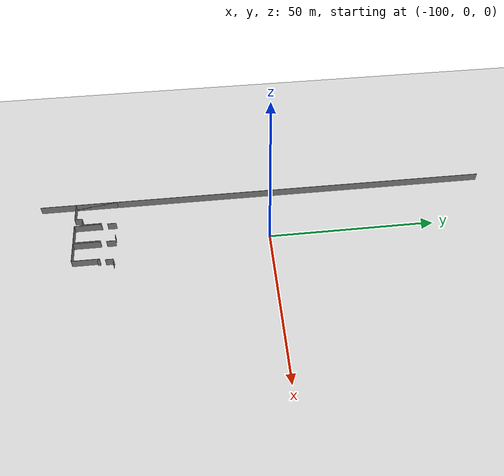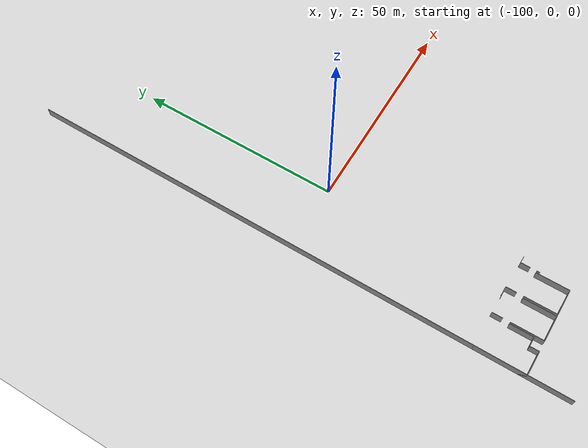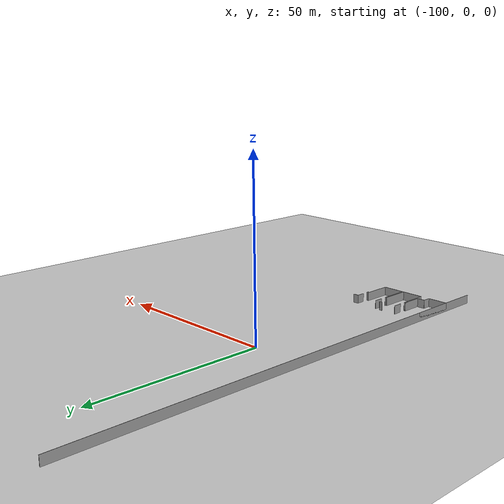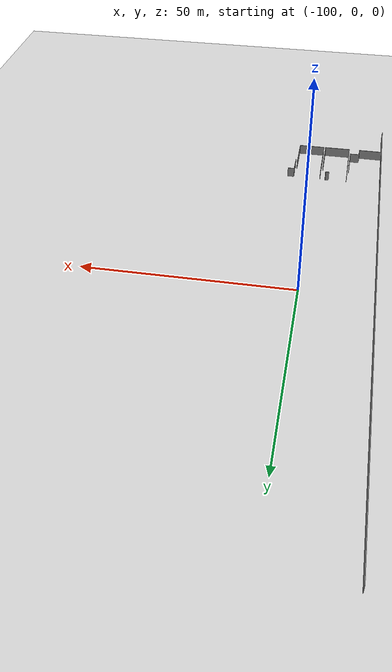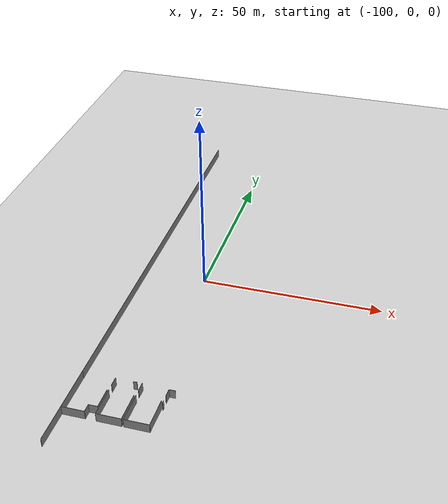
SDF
<sdf version="1.6">
 <world name="default">
  <model name="ground_plane">
   <static>1</static>
   <link name="link">
    <collision name="collision">
     <geometry><plane><normal>0 0 1</normal><size>100 100</size></plane></geometry>
     <surface><friction><ode><mu>100</mu><mu2>50</mu2></ode></friction></surface>
    </collision>
    <visual name="visual">
     <cast_shadows>0</cast_shadows>
     <geometry><plane><normal>0 0 1</normal><size>100 100</size></plane></geometry>
     <material>
      <script><uri>file://media/materials/scripts/gazebo.material</uri><name>Gazebo/Grey</name></script>
     </material>
    </visual>
   </link>
  </model>
  <model name="0510035518_A_40_1_101">
   <static>1</static>
   <link name="Wall_154">
    <collision name="Wall_154_Collision">
     <geometry><box><size>1.62006986345 0.1 2.5</size></box></geometry>
     <pose>0.810034931724 0 1.25 0 0 0</pose>
    </collision>
    <visual name="Wall_154_Visual">
     <pose>0.810034931724 0 1.25 0 0 0</pose>
     <geometry><box><size>1.62006986345 0.1 2.5</size></box></geometry>
     <material>
      <script><uri>file://media/materials/scripts/gazebo.material</uri><name>Gazebo/Grey</name></script>
      <ambient>1 1 1 1</ambient>
     </material>
    </visual>
    <pose>22.5153382026 -114.531597332 0 0 0 0.0</pose>
   </link>
   <link name="Wall_158">
    <collision name="Wall_158_Collision">
     <geometry><box><size>0.772054620514 0.1 2.5</size></box></geometry>
     <pose>0.386027310257 0 1.25 0 0 0</pose>
    </collision>
    <visual name="Wall_158_Visual">
     <pose>0.386027310257 0 1.25 0 0 0</pose>
     <geometry><box><size>0.772054620514 0.1 2.5</size></box></geometry>
     <material>
      <script><uri>file://media/materials/scripts/gazebo.material</uri><name>Gazebo/Grey</name></script>
      <ambient>1 1 1 1</ambient>
     </material>
    </visual>
    <pose>22.519657034 -119.176627501 0 0 0 1.57079632679</pose>
   </link>
   <link name="Wall_159">
    <collision name="Wall_159_Collision">
     <geometry><box><size>2.33598366848 0.1 2.5</size></box></geometry>
     <pose>1.16799183424 0 1.25 0 0 0</pose>
    </collision>
    <visual name="Wall_159_Visual">
     <pose>1.16799183424 0 1.25 0 0 0</pose>
     <geometry><box><size>2.33598366848 0.1 2.5</size></box></geometry>
     <material>
      <script><uri>file://media/materials/scripts/gazebo.material</uri><name>Gazebo/Grey</name></script>
      <ambient>1 1 1 1</ambient>
     </material>
    </visual>
    <pose>22.519657034 -116.867577009 0 0 0 1.57264515557</pose>
   </link>
   <link name="Wall_160">
    <collision name="Wall_160_Collision">
     <geometry><box><size>8.09298189902 0.1 2.5</size></box></geometry>
     <pose>4.04649094951 0 1.25 0 0 0</pose>
    </collision>
    <visual name="Wall_160_Visual">
     <pose>4.04649094951 0 1.25 0 0 0</pose>
     <geometry><box><size>8.09298189902 0.1 2.5</size></box></geometry>
     <material>
      <script><uri>file://media/materials/scripts/gazebo.material</uri><name>Gazebo/Grey</name></script>
      <ambient>1 1 1 1</ambient>
     </material>
    </visual>
    <pose>15.5859002858 -126.546332169 0 0 0 1.57079632679</pose>
   </link>
   <link name="Wall_161">
    <collision name="Wall_161_Collision">
     <geometry><box><size>2.66014607812 0.1 2.5</size></box></geometry>
     <pose>1.33007303906 0 1.25 0 0 0</pose>
    </collision>
    <visual name="Wall_161_Visual">
     <pose>1.33007303906 0 1.25 0 0 0</pose>
     <geometry><box><size>2.66014607812 0.1 2.5</size></box></geometry>
     <material>
      <script><uri>file://media/materials/scripts/gazebo.material</uri><name>Gazebo/Grey</name></script>
      <ambient>1 1 1 1</ambient>
     </material>
    </visual>
    <pose>15.5859002858 -116.775357256 0 0 0 1.57079632679</pose>
   </link>
   <link name="Wall_164">
    <collision name="Wall_164_Collision">
     <geometry><box><size>8.11559225151 0.1 2.5</size></box></geometry>
     <pose>4.05779612575 0 1.25 0 0 0</pose>
    </collision>
    <visual name="Wall_164_Visual">
     <pose>4.05779612575 0 1.25 0 0 0</pose>
     <geometry><box><size>8.11559225151 0.1 2.5</size></box></geometry>
     <material>
      <script><uri>file://media/materials/scripts/gazebo.material</uri><name>Gazebo/Grey</name></script>
      <ambient>1 1 1 1</ambient>
     </material>
    </visual>
    <pose>22.05449349 -118.443188314 0 0 0 -1.57079632679</pose>
   </link>
   <link name="Wall_165">
    <collision name="Wall_165_Collision">
     <geometry><box><size>6.46860518225 0.1 2.5</size></box></geometry>
     <pose>3.23430259113 0 1.25 0 0 0</pose>
    </collision>
    <visual name="Wall_165_Visual">
     <pose>3.23430259113 0 1.25 0 0 0</pose>
     <geometry><box><size>6.46860518225 0.1 2.5</size></box></geometry>
     <material>
      <script><uri>file://media/materials/scripts/gazebo.material</uri><name>Gazebo/Grey</name></script>
      <ambient>1 1 1 1</ambient>
     </material>
    </visual>
    <pose>22.05449349 -126.558780565 0 0 0 3.13966821955</pose>
   </link>
   <link name="Wall_168">
    <collision name="Wall_168_Collision">
     <geometry><box><size>0.904414099714 0.1 2.5</size></box></geometry>
     <pose>0.452207049857 0 1.25 0 0 0</pose>
    </collision>
    <visual name="Wall_168_Visual">
     <pose>0.452207049857 0 1.25 0 0 0</pose>
     <geometry><box><size>0.904414099714 0.1 2.5</size></box></geometry>
     <material>
      <script><uri>file://media/materials/scripts/gazebo.material</uri><name>Gazebo/Grey</name></script>
      <ambient>1 1 1 1</ambient>
     </material>
    </visual>
    <pose>13.3218164497 -114.242743728 0 0 0 0.0</pose>
   </link>
   <link name="Wall_169">
    <collision name="Wall_169_Collision">
     <geometry><box><size>0.131851381391 0.1 2.5</size></box></geometry>
     <pose>0.0659256906955 0 1.25 0 0 0</pose>
    </collision>
    <visual name="Wall_169_Visual">
     <pose>0.0659256906955 0 1.25 0 0 0</pose>
     <geometry><box><size>0.131851381391 0.1 2.5</size></box></geometry>
     <material>
      <script><uri>file://media/materials/scripts/gazebo.material</uri><name>Gazebo/Grey</name></script>
      <ambient>1 1 1 1</ambient>
     </material>
    </visual>
    <pose>14.2262305494 -114.242743728 0 0 0 1.57079632679</pose>
   </link>
   <link name="Wall_172">
    <collision name="Wall_172_Collision">
     <geometry><box><size>8.0348046999 0.1 2.5</size></box></geometry>
     <pose>4.01740234995 0 1.25 0 0 0</pose>
    </collision>
    <visual name="Wall_172_Visual">
     <pose>4.01740234995 0 1.25 0 0 0</pose>
     <geometry><box><size>8.0348046999 0.1 2.5</size></box></geometry>
     <material>
      <script><uri>file://media/materials/scripts/gazebo.material</uri><name>Gazebo/Grey</name></script>
      <ambient>1 1 1 1</ambient>
     </material>
    </visual>
    <pose>15.1303906002 -118.511527469 0 0 0 -1.57079632679</pose>
   </link>
   <link name="Wall_173">
    <collision name="Wall_173_Collision">
     <geometry><box><size>6.44928548746 0.1 2.5</size></box></geometry>
     <pose>3.22464274373 0 1.25 0 0 0</pose>
    </collision>
    <visual name="Wall_173_Visual">
     <pose>3.22464274373 0 1.25 0 0 0</pose>
     <geometry><box><size>6.44928548746 0.1 2.5</size></box></geometry>
     <material>
      <script><uri>file://media/materials/scripts/gazebo.material</uri><name>Gazebo/Grey</name></script>
      <ambient>1 1 1 1</ambient>
     </material>
    </visual>
    <pose>15.1303906002 -126.546332169 0 0 0 3.14159265359</pose>
   </link>
   <link name="Wall_174">
    <collision name="Wall_174_Collision">
     <geometry><box><size>8.08104160051 0.1 2.5</size></box></geometry>
     <pose>4.04052080025 0 1.25 0 0 0</pose>
    </collision>
    <visual name="Wall_174_Visual">
     <pose>4.04052080025 0 1.25 0 0 0</pose>
     <geometry><box><size>8.08104160051 0.1 2.5</size></box></geometry>
     <material>
      <script><uri>file://media/materials/scripts/gazebo.material</uri><name>Gazebo/Grey</name></script>
      <ambient>1 1 1 1</ambient>
     </material>
    </visual>
    <pose>8.68110511273 -126.546332169 0 0 0 1.57079632679</pose>
   </link>
   <link name="Wall_175">
    <collision name="Wall_175_Collision">
     <geometry><box><size>2.62661162274 0.1 2.5</size></box></geometry>
     <pose>1.31330581137 0 1.25 0 0 0</pose>
    </collision>
    <visual name="Wall_175_Visual">
     <pose>1.31330581137 0 1.25 0 0 0</pose>
     <geometry><box><size>2.62661162274 0.1 2.5</size></box></geometry>
     <material>
      <script><uri>file://media/materials/scripts/gazebo.material</uri><name>Gazebo/Grey</name></script>
      <ambient>1 1 1 1</ambient>
     </material>
    </visual>
    <pose>8.68110511273 -116.731152747 0 0 0 1.57079632679</pose>
   </link>
   <link name="Wall_176">
    <collision name="Wall_176_Collision">
     <geometry><box><size>12.4534772944 0.1 2.5</size></box></geometry>
     <pose>6.22673864719 0 1.25 0 0 0</pose>
    </collision>
    <visual name="Wall_176_Visual">
     <pose>6.22673864719 0 1.25 0 0 0</pose>
     <geometry><box><size>12.4534772944 0.1 2.5</size></box></geometry>
     <material>
      <script><uri>file://media/materials/scripts/gazebo.material</uri><name>Gazebo/Grey</name></script>
      <ambient>1 1 1 1</ambient>
     </material>
    </visual>
    <pose>0.0 -126.548872658 0 0 0 1.57079632679</pose>
   </link>
   <link name="Wall_179">
    <collision name="Wall_179_Collision">
     <geometry><box><size>5.79485550969 0.1 2.5</size></box></geometry>
     <pose>2.89742775484 0 1.25 0 0 0</pose>
    </collision>
    <visual name="Wall_179_Visual">
     <pose>2.89742775484 0 1.25 0 0 0</pose>
     <geometry><box><size>5.79485550969 0.1 2.5</size></box></geometry>
     <material>
      <script><uri>file://media/materials/scripts/gazebo.material</uri><name>Gazebo/Grey</name></script>
      <ambient>1 1 1 1</ambient>
     </material>
    </visual>
    <pose>8.29215624008 -118.490949508 0 0 0 -1.57079632679</pose>
   </link>
   <link name="Wall_180">
    <collision name="Wall_180_Collision">
     <geometry><box><size>2.33293108923 0.1 2.5</size></box></geometry>
     <pose>1.16646554462 0 1.25 0 0 0</pose>
    </collision>
    <visual name="Wall_180_Visual">
     <pose>1.16646554462 0 1.25 0 0 0</pose>
     <geometry><box><size>2.33293108923 0.1 2.5</size></box></geometry>
     <material>
      <script><uri>file://media/materials/scripts/gazebo.material</uri><name>Gazebo/Grey</name></script>
      <ambient>1 1 1 1</ambient>
     </material>
    </visual>
    <pose>8.29215624008 -124.285805017 0 0 0 3.14159265359</pose>
   </link>
   <link name="Wall_181">
    <collision name="Wall_181_Collision">
     <geometry><box><size>2.28262940616 0.1 2.5</size></box></geometry>
     <pose>1.14131470308 0 1.25 0 0 0</pose>
    </collision>
    <visual name="Wall_181_Visual">
     <pose>1.14131470308 0 1.25 0 0 0</pose>
     <geometry><box><size>2.28262940616 0.1 2.5</size></box></geometry>
     <material>
      <script><uri>file://media/materials/scripts/gazebo.material</uri><name>Gazebo/Grey</name></script>
      <ambient>1 1 1 1</ambient>
     </material>
    </visual>
    <pose>5.95922515084 -124.285805017 0 0 0 -1.57079632679</pose>
   </link>
   <link name="Wall_182">
    <collision name="Wall_182_Collision">
     <geometry><box><size>5.9592572575 0.1 2.5</size></box></geometry>
     <pose>2.97962862875 0 1.25 0 0 0</pose>
    </collision>
    <visual name="Wall_182_Visual">
     <pose>2.97962862875 0 1.25 0 0 0</pose>
     <geometry><box><size>5.9592572575 0.1 2.5</size></box></geometry>
     <material>
      <script><uri>file://media/materials/scripts/gazebo.material</uri><name>Gazebo/Grey</name></script>
      <ambient>1 1 1 1</ambient>
     </material>
    </visual>
    <pose>5.95922515084 -126.568434424 0 0 0 3.13831006317</pose>
   </link>
   <link name="Wall_457">
    <collision name="Wall_457_Collision">
     <geometry><box><size>137.230612893 0.1 2.5</size></box></geometry>
     <pose>68.6153064465 0 1.25 0 0 0</pose>
    </collision>
    <visual name="Wall_457_Visual">
     <pose>68.6153064465 0 1.25 0 0 0</pose>
     <geometry><box><size>137.230612893 0.1 2.5</size></box></geometry>
     <material>
      <script><uri>file://media/materials/scripts/gazebo.material</uri><name>Gazebo/Grey</name></script>
      <ambient>1 1 1 1</ambient>
     </material>
    </visual>
    <pose>0.0 -137.230612893 0 0 0 1.57079632679</pose>
   </link>
   <pose>-116.8 68.630612893 0 0 0 0</pose>
  </model>
 </world>
</sdf>
